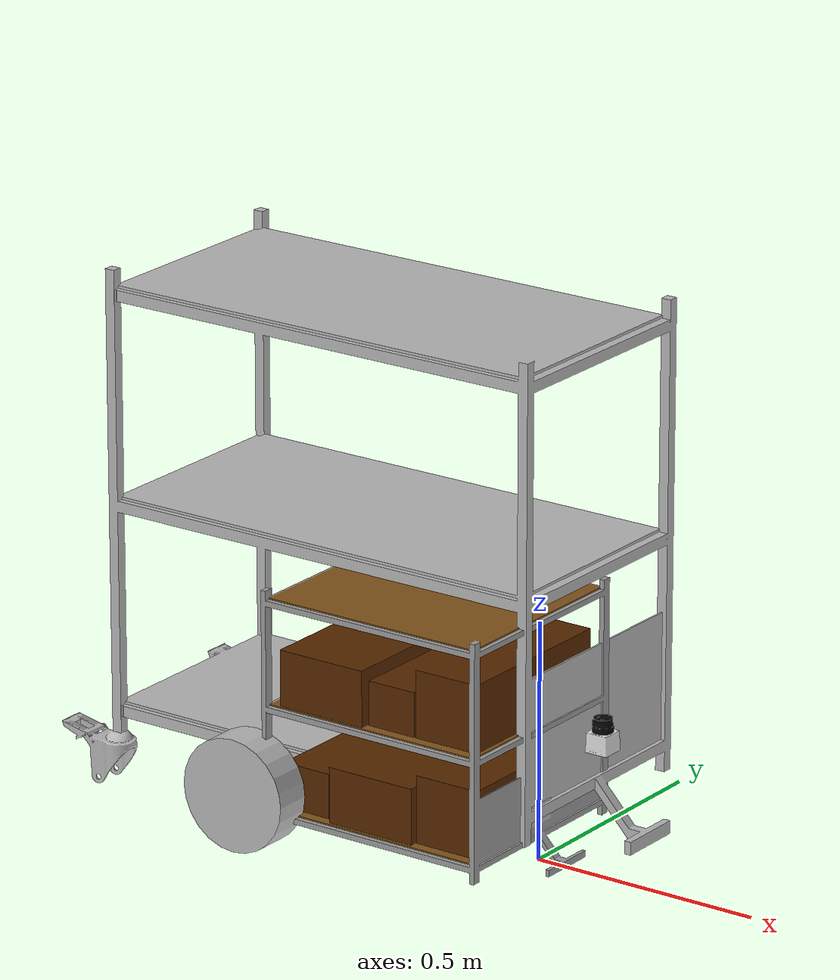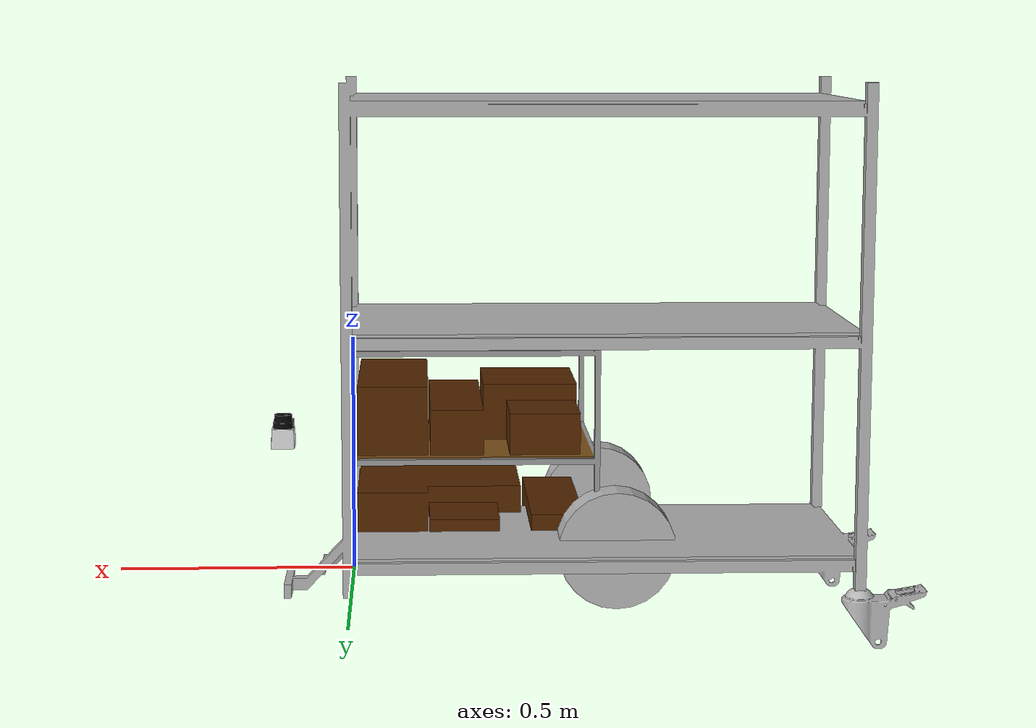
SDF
<?xml version="1.0" ?>
<sdf version="1.5">
  <model name='mobile_robot_base'>
      <self_collide>0</self_collide>
      <static>0</static>
      <link name='chassis'>
        <pose>0 0 0 0 0 -1.57079632679</pose>
        <collision name='collision'>
          <geometry>
            <mesh>
              <scale>1 1 1</scale>
              <uri>file:///home/truan/Object-Detection/simulation/catkin_ws/src/gazebo_sim/models/cart_model_2/meshes/cart_base_collision.stl</uri>
            </mesh>
          </geometry>
          <max_contacts>10</max_contacts>
          <surface>
            <contact>
              <ode/>
            </contact>
            <bounce/>
            <friction>
              <torsional>
                <ode/>
              </torsional>
              <ode/>
            </friction>
          </surface>
        </collision>
        <visual name='visual'>
          <pose>0 0 0 0 -0 0</pose>
          <geometry>
            <mesh>
              <uri>file:///home/truan/Object-Detection/simulation/catkin_ws/src/gazebo_sim/models/cart_model_2/meshes/cart_base.dae</uri>
              <scale>0.9 0.5 0.5</scale>
            </mesh>
          </geometry>
        </visual>
        <collision name='caster_collision'>
          <pose>0 0 0 0 -0 0</pose>
          <geometry>
            <mesh>
              <uri>file:///home/truan/Object-Detection/simulation/catkin_ws/src/gazebo_sim/models/cart_model_2/meshes/cart_base.dae</uri>
              <scale>1 1 1</scale>
            </mesh>
          </geometry>
          <surface>
            <friction>
              <ode>
                <mu>0</mu>
                <mu2>0</mu2>
                <slip1>1</slip1>
                <slip2>1</slip2>
              </ode>
              <torsional>
                <ode/>
              </torsional>
            </friction>
            <contact>
              <ode/>
            </contact>
            <bounce/>
          </surface>
          <max_contacts>10</max_contacts>
        </collision>
        <visual name='caster_visual'>
          <pose>-0.19 0 0 0 -0 0</pose>
          <geometry>
            <mesh>
              <scale>1 1 1</scale>
              <uri>file:///home/truan/Object-Detection/simulation/catkin_ws/src/gazebo_sim/models/cart_model_2/meshes/cart_base_collision.stl</uri>
            </mesh>
          </geometry>
        </visual>
        <self_collide>0</self_collide>
        <inertial>
          <pose>0 0 0 0 -0 0</pose>
          <inertia>
            <ixx>1</ixx>
            <ixy>0</ixy>
            <ixz>0</ixz>
            <iyy>1</iyy>
            <iyz>0</iyz>
            <izz>1</izz>
          </inertia>
          <mass>1</mass>
        </inertial>
        <enable_wind>0</enable_wind>
        <kinematic>0</kinematic>
      </link>
      <link name='left_wheel'>
        <pose>-0.54 -0.245 0.1 -0 1.5707 1.5707</pose>
        <collision name='collision'>
          <geometry>
            <cylinder>
              <radius>0.12</radius>
              <length>0.2</length>
            </cylinder>
          </geometry>
          <max_contacts>10</max_contacts>
          <surface>
            <contact>
              <ode/>
            </contact>
            <bounce/>
            <friction>
              <torsional>
                <ode/>
              </torsional>
              <ode/>
            </friction>
          </surface>
        </collision>
        <visual name='visual'>
          <geometry>
            <cylinder>
              <radius>0.12</radius>
              <length>0.08</length>
            </cylinder>
          </geometry>
        </visual>
        <self_collide>0</self_collide>
        <inertial>
          <pose>0 0 0 0 -0 0</pose>
          <inertia>
            <ixx>1</ixx>
            <ixy>0</ixy>
            <ixz>0</ixz>
            <iyy>1</iyy>
            <iyz>0</iyz>
            <izz>1</izz>
          </inertia>
          <mass>1</mass>
        </inertial>
        <enable_wind>0</enable_wind>
        <kinematic>0</kinematic>
      </link>
      <link name='right_wheel'>
        <pose>-0.54 0.245 0.1 -0 1.5707 1.5707</pose>
        <collision name='collision'>
          <geometry>
            <cylinder>
              <radius>0.12</radius>
              <length>0.2</length>
            </cylinder>
          </geometry>
          <max_contacts>10</max_contacts>
          <surface>
            <contact>
              <ode/>
            </contact>
            <bounce/>
            <friction>
              <torsional>
                <ode/>
              </torsional>
              <ode/>
            </friction>
          </surface>
        </collision>
        <visual name='visual'>
          <geometry>
            <cylinder>
              <radius>0.12</radius>
              <length>0.08</length>
            </cylinder>
          </geometry>
        </visual>
        <self_collide>0</self_collide>
        <inertial>
          <pose>0 0 0 0 -0 0</pose>
          <inertia>
            <ixx>1</ixx>
            <ixy>0</ixy>
            <ixz>0</ixz>
            <iyy>1</iyy>
            <iyz>0</iyz>
            <izz>1</izz>
          </inertia>
          <mass>1</mass>
        </inertial>
        <enable_wind>0</enable_wind>
        <kinematic>0</kinematic>
      </link>
      <link name='laser_link'>
        <inertial>
          <mass>0.1</mass>
          <pose>0 0 0 0 -0 0</pose>
          <inertia>
            <ixx>1</ixx>
            <ixy>0</ixy>
            <ixz>0</ixz>
            <iyy>1</iyy>
            <iyz>0</iyz>
            <izz>1</izz>
          </inertia>
        </inertial>
        <pose>0.15 0 0.3 0 -0 0</pose>
        <visual name='visual'>
          <geometry>
            <mesh>
              <uri>file:///home/truan/Object-Detection/simulation/catkin_ws/src/gazebo_sim/models/hokuyo/meshes/hokuyo.dae</uri>
            </mesh>
          </geometry>
        </visual>
        <collision name='collision-base'>
          <pose>0 0 -0.0145 0 -0 0</pose>
          <geometry>
            <box>
              <size>0.05 0.05 0.041</size>
            </box>
          </geometry>
          <max_contacts>10</max_contacts>
          <surface>
            <contact>
              <ode/>
            </contact>
            <bounce/>
            <friction>
              <torsional>
                <ode/>
              </torsional>
              <ode/>
            </friction>
          </surface>
        </collision>
        <collision name='collision-top'>
          <pose>0 0 0.0205 0 -0 0</pose>
          <geometry>
            <cylinder>
              <radius>0.021</radius>
              <length>0.029</length>
            </cylinder>
          </geometry>
          <max_contacts>10</max_contacts>
          <surface>
            <contact>
              <ode/>
            </contact>
            <bounce/>
            <friction>
              <torsional>
                <ode/>
              </torsional>
              <ode/>
            </friction>
          </surface>
        </collision>
        <sensor name='laser' type='ray'>
          <pose>0.01 0 0.0175 0 -0 0</pose>
          <ray>
            <scan>
              <horizontal>
                <samples>181</samples>
                <resolution>1</resolution>
                <min_angle>-1.5708</min_angle>
                <max_angle>1.5708</max_angle>
              </horizontal>
              <vertical>
                <samples>1</samples>
                <min_angle>0</min_angle>
                <max_angle>0</max_angle>
              </vertical>
            </scan>
            <range>
              <min>0.08</min>
              <max>10</max>
              <resolution>0.05</resolution>
            </range>
          </ray>
          <always_on>1</always_on>
          <update_rate>10</update_rate>
          <visualize>1</visualize>
        </sensor>
        <self_collide>0</self_collide>
        <enable_wind>0</enable_wind>
        <kinematic>0</kinematic>
      </link>
      <joint name='left_wheel_hinge' type='revolute'>
        <pose>0 0 -0.03 0 -0 0</pose>
        <child>left_wheel</child>
        <parent>chassis</parent>
        <axis>
          <xyz>0 1 0</xyz>
          <limit>
            <lower>-1e+16</lower>
            <upper>1e+16</upper>
          </limit>
          <dynamics>
            <spring_reference>0</spring_reference>
            <spring_stiffness>0</spring_stiffness>
          </dynamics>
        </axis>
      </joint>
      <joint name='right_wheel_hinge' type='revolute'>
        <pose>0 0 0.03 0 -0 0</pose>
        <child>right_wheel</child>
        <parent>chassis</parent>
        <axis>
          <xyz>0 1 0</xyz>
          <limit>
            <lower>-1e+16</lower>
            <upper>1e+16</upper>
          </limit>
          <dynamics>
            <spring_reference>0</spring_reference>
            <spring_stiffness>0</spring_stiffness>
          </dynamics>
        </axis>
      </joint>
      <joint name='laser_joint' type='fixed'>
        <child>laser_link</child>
        <parent>chassis</parent>
      </joint>
      <plugin name='ignition::gazebo::systems::DiffDrive' filename='ignition-gazebo-diff-drive-system'>
        <ros>
          <namespace>/mobile_robot</namespace>
          <remapping>cmd_vel:=cmd_vel</remapping>
          <remapping>odom:=odom</remapping>
        </ros>
        <left_joint>left_wheel_hinge</left_joint>
        <right_joint>right_wheel_hinge</right_joint>
        <wheel_separation>0.49</wheel_separation>
        <wheel_diameter>0.24</wheel_diameter>
        <max_wheel_torque>20</max_wheel_torque>
        <max_wheel_acceleration>10</max_wheel_acceleration>
        <publish_odom>1</publish_odom>
        <publish_odom_tf>1</publish_odom_tf>
        <publish_wheel_tf>1</publish_wheel_tf>
        <odometry_frame>odom</odometry_frame>
        <robot_base_frame>chassis</robot_base_frame>
      </plugin>
  </model>
</sdf>
